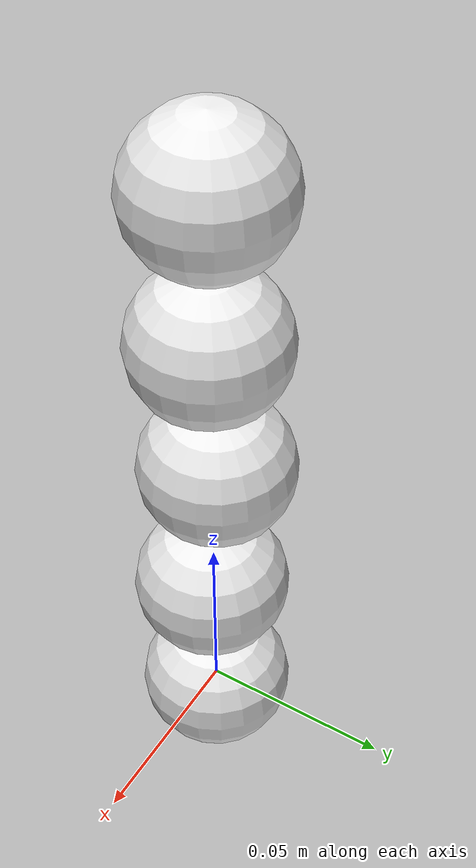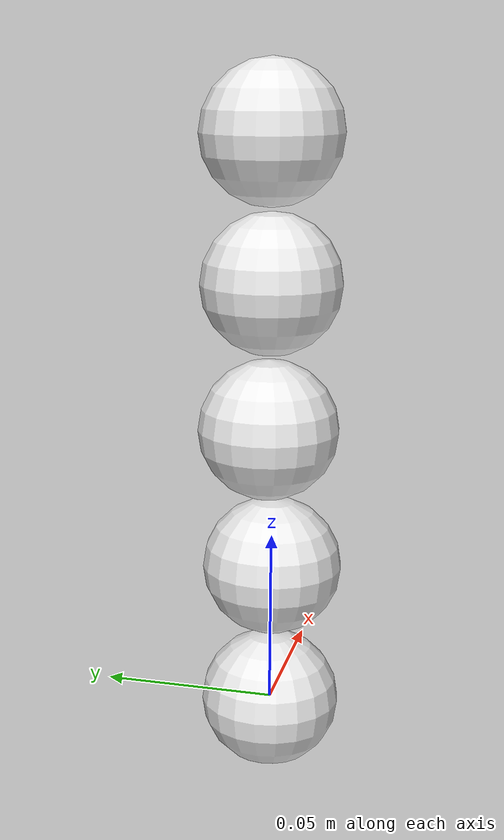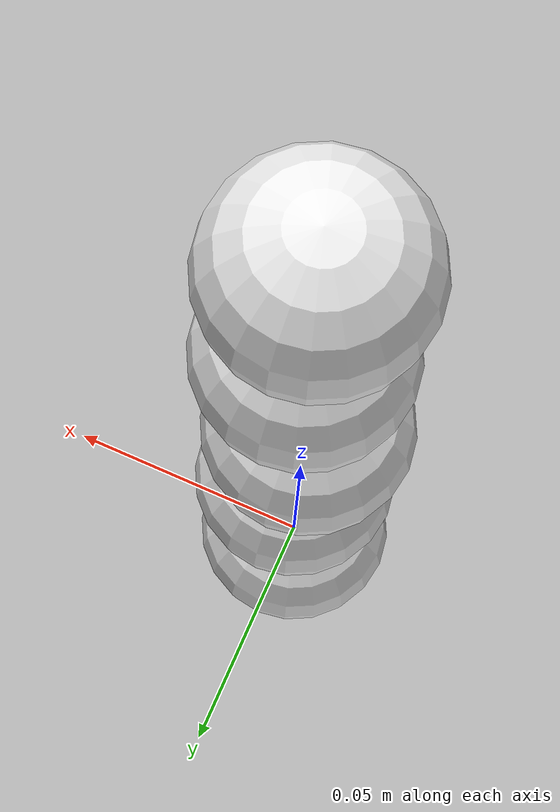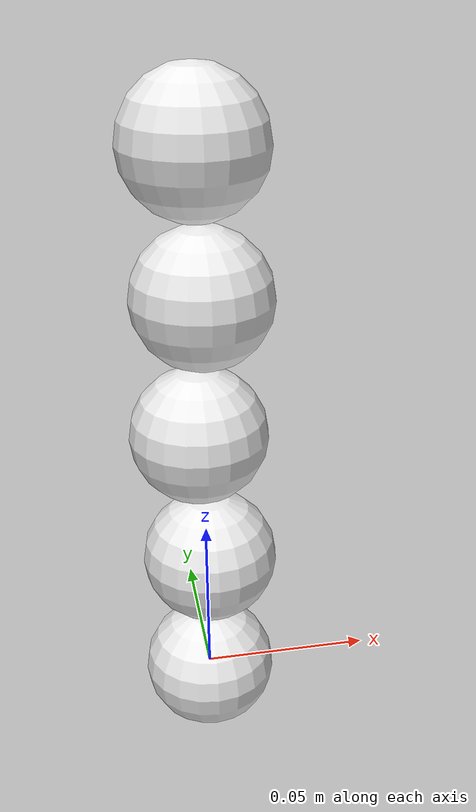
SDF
<?xml version="1.0" ?>
<sdf version="1.5">
  <model name="popcornx5">
    <include>
		<name>pop1</name>
		<pose>0 0 0 0 0 0</pose>
		<uri>model://popcorn</uri>
    </include>
    <include>
		<name>pop2</name>
		<pose>0.001 0 .041 0 0 0</pose>
		<uri>model://popcorn</uri>
    </include>
    <include>
		<name>pop3</name>
		<pose>-0.001 0.001 .082 0 0 0</pose>
		<uri>model://popcorn</uri>
    </include>
    <include>
		<name>pop4</name>
		<pose>0.001 0.001 .123 0 0 0</pose>
		<uri>model://popcorn</uri>
    </include>
    <include>
		<name>pop5</name>
		<pose>0 0.001 .164 0 0 0</pose>
		<uri>model://popcorn</uri>
    </include>
  </model>
 </sdf>

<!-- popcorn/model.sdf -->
<sdf version="1.5">
  <!--une balle de ping pong pèse 2,7 g pour un rayon de 20mm-->
  <model name="popcorn">
    <link name="link">
      <self_collide>1</self_collide>
      <inertial>
		<mass>.0027</mass>
	    <inertia>
			<!--2/3mr^2 pour une sphere creuse-->
            <ixx>0.00000072</ixx>
            <ixy>0</ixy>
            <ixz>0</ixz>
            <iyy>0.00000072</iyy>
            <iyz>0</iyz>
            <izz>0.00000072</izz>
        </inertia>
      </inertial>
	  <collision name="collision">
		<max_contacts>1</max_contacts>
        <geometry>
          <sphere>
            <radius>0.02</radius><!-- specification E2015_Rules_EU_EN_final.pdf3 -->
          </sphere>
        </geometry>
		<surface>
		  <bounce>
			<restitution_coefficient>0.9128</restitution_coefficient>
			<threshold>0.001</threshold>
		  </bounce>
          <contact>
            <ode>
              <max_vel>10</max_vel>
            </ode>
          </contact>
		  <friction>
			<ode>
			  <mu>1</mu>
			  <mu2>1</mu2>
			</ode>
		  </friction>
		</surface>
      </collision>
      <visual name="visual">
        <geometry>
          <sphere>
            <radius>0.02</radius>
          </sphere>
        </geometry>
        <material>
          <script>
            <uri>file://media/materials/scripts/gazebo.material</uri>
            <name>Gazebo/White</name>
          </script>
        </material>
      </visual>
    </link>
    </model>
 </sdf>
